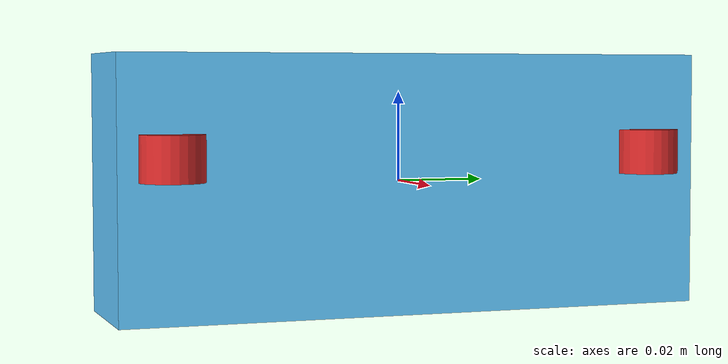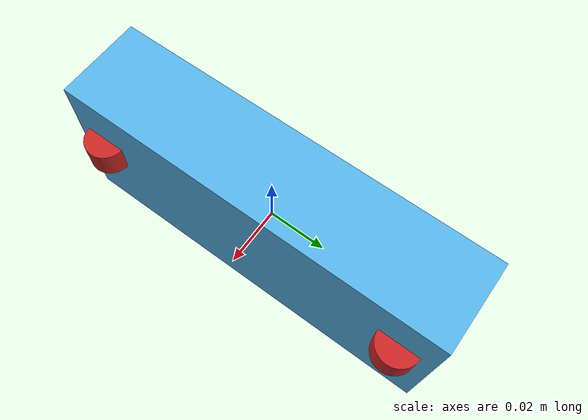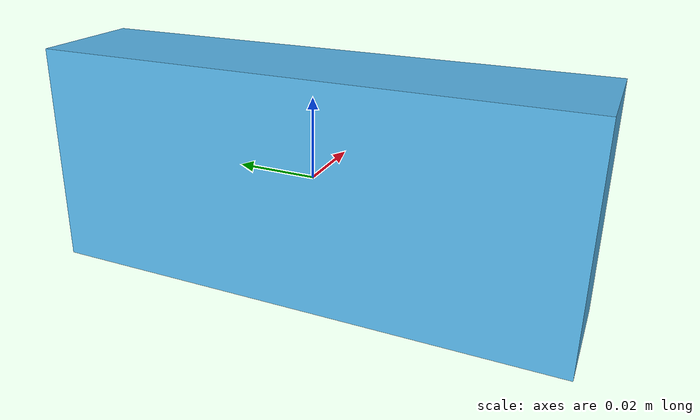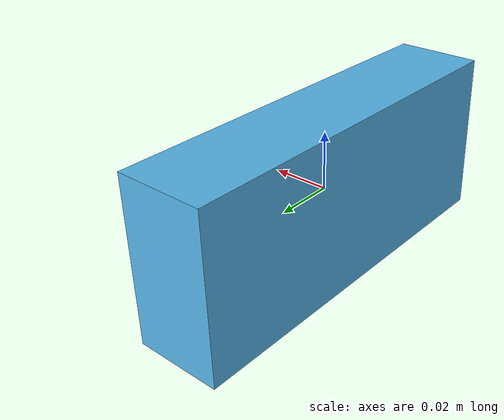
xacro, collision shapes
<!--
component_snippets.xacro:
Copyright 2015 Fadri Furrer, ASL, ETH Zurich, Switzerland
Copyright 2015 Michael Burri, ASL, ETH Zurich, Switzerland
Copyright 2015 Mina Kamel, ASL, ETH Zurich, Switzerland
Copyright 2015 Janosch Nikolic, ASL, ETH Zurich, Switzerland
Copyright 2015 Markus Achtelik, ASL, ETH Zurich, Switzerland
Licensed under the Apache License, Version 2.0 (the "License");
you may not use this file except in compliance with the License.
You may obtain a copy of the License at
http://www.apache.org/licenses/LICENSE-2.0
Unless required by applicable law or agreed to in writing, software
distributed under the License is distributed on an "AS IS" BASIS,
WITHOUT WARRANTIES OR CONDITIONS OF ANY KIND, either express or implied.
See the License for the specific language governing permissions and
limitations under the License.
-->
<?xml version="1.0" ?>

<robot name="vi_camera" xmlns:xacro="http://ros.org/wiki/xacro">

  <xacro:include filename="$(find vioquad_land)/extra/simulation/models/vi_camera/xacro/component_snippets.xacro" />
  <!-- VI-sensor. -->
  <xacro:vi_sensor_macro
    namespace="vi_sensor"
    parent_link="link"
    enable_cameras="true"
    enable_depth="true">
    <origin xyz="0.0 0.0 0.0" rpy="0.0 0.0 0.0" />
  </xacro:vi_sensor_macro>

</robot>

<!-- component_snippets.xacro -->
<robot xmlns:xacro="http://ros.org/wiki/xacro">

  <!-- Macro to add a camera. -->
  <xacro:macro name="camera_macro"
    params="namespace parent_link camera_suffix frame_rate
      horizontal_fov image_width image_height image_format min_distance
      max_distance noise_mean noise_stddev enable_visual *geometry *origin">
    <link name="${namespace}/camera_${camera_suffix}_link">
      <collision>
        <origin xyz="0 0 0" rpy="0 0 0" />
        <geometry>
          <xacro:insert_block name="geometry" />
        </geometry>
      </collision>
      <xacro:if value="${enable_visual}">
        <visual>
          <origin xyz="0 0 0" rpy="0 ${pi/2} 0" />
          <geometry>
            <xacro:insert_block name="geometry" />
          </geometry>
          <material name="red" />
        </visual>
      </xacro:if>
      <inertial>
        <mass value="1e-5" />
        <origin xyz="0 0 0" rpy="0 0 0" />
        <inertia ixx="1e-6" ixy="0" ixz="0" iyy="1e-6" iyz="0" izz="1e-6" />
      </inertial>
    </link>
    <joint name="${namespace}/camera_${camera_suffix}_joint" type="fixed">
      <xacro:insert_block name="origin" />
      <parent link="${parent_link}" />
      <child link="${namespace}/camera_${camera_suffix}_link" />
    </joint>
    <link name="${namespace}/camera_${camera_suffix}_optical_link" />
    <joint name="${namespace}/camera_${camera_suffix}_optical_joint" type="fixed" >
      <origin xyz="0 0 0" rpy="${-pi/2} 0 ${-pi/2}" />
      <parent link="${namespace}/camera_${camera_suffix}_link" />
      <child link="${namespace}/camera_${camera_suffix}_optical_link" />
    </joint>
    <gazebo reference="${namespace}/camera_${camera_suffix}_link">
      <sensor type="camera" name="${namespace}_camera_${camera_suffix}">
        <update_rate>${frame_rate}</update_rate>
        <camera name="head">
          <horizontal_fov>${horizontal_fov}</horizontal_fov>
          <image>
            <width>${image_width}</width>
            <height>${image_height}</height>
            <format>${image_format}</format>
          </image>
          <clip>
            <near>${min_distance}</near>
            <far>${max_distance}</far>
          </clip>
          <noise>
            <type>gaussian</type>
            <!-- Noise is sampled independently per pixel on each frame.
                 That pixel's noise value is added to each of its color
                 channels, which at that point lie in the range [0,1]. -->
            <mean>${noise_mean}</mean>
            <stddev>${noise_stddev}</stddev>
          </noise>
        </camera>
        <plugin name="${namespace}_camera_${camera_suffix}_controller" filename="libgazebo_ros_camera.so">
          <robotNamespace>${namespace}</robotNamespace>
          <alwaysOn>true</alwaysOn>
          <updateRate>${frame_rate}</updateRate>
          <cameraName>camera_${camera_suffix}</cameraName>
          <imageTopicName>image_raw</imageTopicName>
          <cameraInfoTopicName>camera_info</cameraInfoTopicName>
          <frameName>camera_${camera_suffix}_link</frameName>
          <hackBaseline>0.0</hackBaseline>
          <distortionK1>0.0</distortionK1>
          <distortionK2>0.0</distortionK2>
          <distortionK3>0.0</distortionK3>
          <distortionT1>0.0</distortionT1>
          <distortionT2>0.0</distortionT2>
        </plugin>
      </sensor>
    </gazebo>
  </xacro:macro>

  <!-- Camera joint macro - just the joints, links, and collisions for a single
       camera. -->
  <xacro:macro name="camera_joint_macro"
    params="namespace parent_link camera_suffix enable_visual *origin *geometry" >
    <link name="${namespace}/camera_${camera_suffix}_link">
      <collision>
        <origin xyz="0 0 0" rpy="0 0 0" />
        <geometry>
          <xacro:insert_block name="geometry" />
        </geometry>
      </collision>
      <xacro:if value="${enable_visual}">
        <visual>
          <origin xyz="0 0 0" rpy="0 0 0" />
          <geometry>
            <xacro:insert_block name="geometry" />
          </geometry>
          <material name="red" />
        </visual>
      </xacro:if>
      <inertial>
        <mass value="1e-5" />
        <origin xyz="0 0 0" rpy="0 0 0" />
        <inertia ixx="1e-6" ixy="0" ixz="0" iyy="1e-6" iyz="0" izz="1e-6" />
      </inertial>
    </link>
    <joint name="${namespace}/camera_${camera_suffix}_joint" type="fixed">
      <xacro:insert_block name="origin" />
      <parent link="${parent_link}" />
      <child link="${namespace}/camera_${camera_suffix}_link" />
    </joint>
  </xacro:macro>

  <!-- Camera sensor macro - just image parameters. -->
  <xacro:macro name="camera_sensor_macro"
    params="camera_suffix horizontal_fov image_width image_height
      image_format min_distance max_distance noise_mean noise_stddev
      baseline" >
    <camera name="${camera_suffix}">
      <pose>0 ${-baseline} 0 0 0 0</pose>
      <horizontal_fov>${horizontal_fov}</horizontal_fov>
      <image>
        <width>${image_width}</width>
        <height>${image_height}</height>
        <format>${image_format}</format>
      </image>
      <clip>
        <near>${min_distance}</near>
        <far>${max_distance}</far>
      </clip>
      <noise>
        <type>gaussian</type>
        <!-- Noise is sampled independently per pixel on each frame.
             That pixel's noise value is added to each of its color
             channels, which at that point lie in the range [0,1]. -->
        <mean>${noise_mean}</mean>
        <stddev>${noise_stddev}</stddev>
      </noise>
    </camera>
  </xacro:macro>

  <!-- Macro to add a multicamera (stereo pair). -->
  <xacro:macro name="stereo_camera_macro"
    params="namespace camera_name parent_link frame_rate
      horizontal_fov image_width image_height image_format min_distance
      max_distance noise_mean noise_stddev enable_visual origin_offset_x
      baseline_y origin_offset_z *geometry">
    <!-- These are parameters for the left camera link and then the right
        as well. -->
    <xacro:camera_joint_macro namespace="${namespace}"
      parent_link="${parent_link}"
      camera_suffix="left" enable_visual="${enable_visual}">
      <origin xyz="${origin_offset_x} ${baseline_y/2} ${origin_offset_z}" rpy="0 0 0" />
      <xacro:insert_block name="geometry" />
    </xacro:camera_joint_macro>
    <xacro:camera_joint_macro namespace="${namespace}"
      parent_link="${parent_link}"
      camera_suffix="right" enable_visual="${enable_visual}">
      <origin xyz="${origin_offset_x} ${-baseline_y/2} ${origin_offset_z}" rpy="0 0 0" />
      <xacro:insert_block name="geometry" />
    </xacro:camera_joint_macro>

    <link name="${namespace}/camera_left_optical_link" />
    <joint name="${namespace}/camera_left_optical_joint" type="fixed" >
      <origin xyz="0 0 0" rpy="${-pi/2} 0 ${-pi/2}" />
      <parent link="${namespace}/camera_left_link" />
      <child link="${namespace}/camera_left_optical_link" />
    </joint>

    <!-- Both cameras in the pair are anchored off the left camera frame. -->
    <gazebo reference="${namespace}/camera_left_link">
      <sensor type="multicamera" name="${namespace}_stereo_camera">
        <update_rate>${frame_rate}</update_rate>

        <!-- Here we set up the individual cameras of the stereo head. -->
        <xacro:camera_sensor_macro camera_suffix="left"
            horizontal_fov="${horizontal_fov}" image_width="${image_width}"
            image_height="${image_height}" image_format="${image_format}"
            min_distance="${min_distance}" max_distance="${max_distance}"
            noise_mean="${noise_mean}" noise_stddev="${noise_stddev}"
            baseline="0">
        </xacro:camera_sensor_macro>

        <xacro:camera_sensor_macro camera_suffix="right"
            horizontal_fov="${horizontal_fov}" image_width="${image_width}"
            image_height="${image_height}" image_format="${image_format}"
            min_distance="${min_distance}" max_distance="${max_distance}"
            noise_mean="${noise_mean}" noise_stddev="${noise_stddev}"
            baseline="${baseline_y}">
        </xacro:camera_sensor_macro>

        <!-- Stereo controller, setting the transforms between the two cameras. -->
        <plugin name="${namespace}_stereo_camera_controller" filename="libgazebo_ros_multicamera.so">
          <alwaysOn>true</alwaysOn>
          <updateRate>0.0</updateRate>
          <cameraName>${camera_name}</cameraName>
          <imageTopicName>image_raw</imageTopicName>
          <cameraInfoTopicName>camera_info</cameraInfoTopicName>
          <frameName>${camera_name}/camera_left_link</frameName>
          <hackBaseline>${baseline_y}</hackBaseline>
          <distortionK1>0.0</distortionK1>
          <distortionK2>0.0</distortionK2>
          <distortionK3>0.0</distortionK3>
          <distortionT1>0.0</distortionT1>
          <distortionT2>0.0</distortionT2>
        </plugin>
      </sensor>
    </gazebo>
  </xacro:macro>

  <!-- Macro to add RotorS IMU. -->

  <!-- Macro for default ROS IMU -->
  <xacro:macro name="imu_plugin_macro"
    params="namespace parent_link imu_topic
      mass_imu_sensor frame_rate gaussian_noise
      *inertia *origin">
    <link name="${namespace}/imu_link">
      <inertial>
        <xacro:insert_block name="inertia" />
        <mass value="${mass_imu_sensor}" />
        <origin xyz="0 0 0" rpy="0 0 0" />
      </inertial>
    </link>
    <joint name="${namespace}/imu_joint" type="revolute">
      <xacro:insert_block name="origin" />
      <parent link="${parent_link}" />
      <child link="${namespace}/imu_link" />
      <limit upper="0" lower="0" effort="0" velocity="0" />
    </joint>
    <gazebo reference="${namespace}/imu_link">
      <gravity>true</gravity>
      <sensor type="imu" name="${namespace}_imu">
        <always_on>true</always_on>
        <update_rate>${frame_rate}</update_rate>
        <plugin name="${namespace}_imu_controller" filename="libgazebo_ros_imu_sensor.so">
          <robotNamespace>${namespace}</robotNamespace>
          <topicName>${imu_topic}</topicName>
          <frameName>imu_link</frameName>
          <updateRateHZ>${frame_rate}</updateRateHZ>
          <gaussianNoise>${gaussian_noise}</gaussianNoise>
          <xyzOffset>0 0 0</xyzOffset>
          <rpyOffset>0 0 0</rpyOffset>
          <initialOrientationAsReference>false</initialOrientationAsReference>
        </plugin>
        <pose>0 0 0 0 0 0</pose>
      </sensor>
    </gazebo>
  </xacro:macro>

  <!-- VI sensor macros -->
  <!-- Macro to add a VI-sensor stereo camera. -->
  <xacro:macro name="vi_sensor_stereo_camera_macro"
    params="namespace parent_link frame_rate origin_offset_x baseline_y origin_offset_z max_range">
    <xacro:stereo_camera_macro
      namespace="${namespace}"
      camera_name="vi_sensor"
      parent_link="${parent_link}"
      frame_rate="${frame_rate}"
      horizontal_fov="1.3962634"
      image_width="752"
      image_height="480"
      image_format="L8"
      min_distance="0.02"
      max_distance="${max_range}"
      noise_mean="0.0"
      noise_stddev="0.007"
      enable_visual="true"
      origin_offset_x="${origin_offset_x}"
      baseline_y="${baseline_y}"
      origin_offset_z="${origin_offset_z}" >
      <cylinder length="0.01" radius="0.007" />
    </xacro:stereo_camera_macro>
  </xacro:macro>

  <!-- Macro to add a depth camera on the VI-sensor. -->
  <xacro:macro name="vi_sensor_depth_macro"
    params="namespace parent_link camera_suffix frame_rate max_range *origin">
    <link name="${namespace}/camera_${camera_suffix}_link">
      <collision>
        <origin xyz="0 0 0" rpy="0 0 0" />
        <geometry>
          <cylinder length="0.01" radius="0.007" />
        </geometry>
      </collision>
      <inertial>
        <mass value="1e-5" />
        <origin xyz="0 0 0" rpy="0 0 0" />
        <inertia ixx="1e-6" ixy="0" ixz="0" iyy="1e-6" iyz="0" izz="1e-6" />
      </inertial>
    </link>
    <joint name="${namespace}/camera_${camera_suffix}_joint" type="fixed">
      <xacro:insert_block name="origin" />
      <parent link="${parent_link}" />
      <child link="${namespace}/camera_${camera_suffix}_link" />
      <limit upper="0" lower="0" effort="0" velocity="0" />
    </joint>
    <!-- Optical center of camera -->
    <link name="${namespace}/camera_${camera_suffix}_optical_center_link" />
    <joint name="${namespace}/camera_${camera_suffix}_optical_center_joint" type="fixed">
      <origin xyz="0 0 0" rpy="${-pi/2} 0 ${-pi/2}" />
      <parent link="${namespace}/camera_${camera_suffix}_link" />
      <child link="${namespace}/camera_${camera_suffix}_optical_center_link" />
      <limit upper="0" lower="0" effort="0" velocity="0" />
    </joint>
    <gazebo reference="${namespace}/camera_${camera_suffix}_link">
      <sensor type="depth" name="${namespace}_camera_${camera_suffix}">
        <always_on>true</always_on>
        <update_rate>${frame_rate}</update_rate>
        <camera>
          <horizontal_fov>2</horizontal_fov>
          <image>
            <format>L8</format>
            <width>640</width>
            <height>480</height>
          </image>
          <clip>
            <near>0.01</near>
            <far>${max_range}</far>
          </clip>
        </camera>
        <plugin name="${namespace}_camera_${camera_suffix}" filename="libgazebo_ros_openni_kinect.so">
          <robotNamespace>${namespace}</robotNamespace>
          <alwaysOn>true</alwaysOn>
          <baseline>0.11</baseline>
          <updateRate>${frame_rate}</updateRate>
          <cameraName>camera_${camera_suffix}</cameraName>
          <imageTopicName>camera/image_raw</imageTopicName>
          <cameraInfoTopicName>camera/camera_info</cameraInfoTopicName>
          <depthImageTopicName>depth/disparity</depthImageTopicName>
          <depthImageCameraInfoTopicName>depth/camera_info</depthImageCameraInfoTopicName>
          <pointCloudTopicName>depth/points</pointCloudTopicName>
          <frameName>camera_${camera_suffix}_optical_center_link</frameName>
          <pointCloudCutoff>0.5</pointCloudCutoff>
          <pointCloudCutoffMax>${max_range}</pointCloudCutoffMax>
          <distortionK1>0.0</distortionK1>
          <distortionK2>0.0</distortionK2>
          <distortionK3>0.0</distortionK3>
          <distortionT1>0.0</distortionT1>
          <distortionT2>0.0</distortionT2>
        </plugin>
      </sensor>
    </gazebo>
  </xacro:macro>

  <!-- VI-Sensor Macro -->
  <xacro:macro name="vi_sensor_macro" params="namespace parent_link enable_cameras enable_depth *origin">
    <link name="${parent_link}"/>
    <!-- Vi Sensor Link -->
    <link name="${namespace}/vi_sensor_link">
      <collision>
        <origin xyz="0 0 0" rpy="0 0 0" />
        <geometry>
          <box size="0.03 0.133 0.057" />
        </geometry>
      </collision>

      <visual>
        <origin xyz="0 0 0" rpy="0 0 0" />
        <geometry>
          <mesh filename="package://vi_camera/meshes/vi_camera.dae" scale="1 1 1" />
        </geometry>
      </visual>

      <inertial>
        <!-- original !-->
        <mass value="1e-16" />   <!-- added by SW !-->
        <origin xyz="0 0 0" rpy="0 0 0" />
        <inertia ixx="1e-6" ixy="0" ixz="0" iyy="1e-6" iyz="0" izz="1e-6" />
      </inertial>
    </link>
    <joint name="${namespace}/vi_sensor_joint" type="fixed">
      <xacro:insert_block name="origin" />
      <parent link="${parent_link}" />
      <child link="${namespace}/vi_sensor_link" />
    </joint>
    <!-- Cameras -->
    <xacro:if value="${enable_cameras}">
      <!-- Insert stereo pair. -->
      <xacro:vi_sensor_stereo_camera_macro
        namespace="${namespace}" parent_link="${namespace}/vi_sensor_link"
        frame_rate="30.0" origin_offset_x="0.015" baseline_y="${0.055*2}"
        origin_offset_z="0.0065" max_range="30.0">
      </xacro:vi_sensor_stereo_camera_macro>
    </xacro:if>

    <!-- Depth Sensor -->
    <xacro:if value="${enable_depth}">
      <xacro:vi_sensor_depth_macro
        namespace="${namespace}" parent_link="${namespace}/vi_sensor_link"
        camera_suffix="depth" frame_rate="30.0" max_range="10.0">
        <origin xyz="0.015 0.055 0.0065" rpy="0 0 0" />
      </xacro:vi_sensor_depth_macro>
    </xacro:if>

    <xacro:imu_plugin_macro
      namespace="${namespace}"
      parent_link="${namespace}/vi_sensor_link"
      imu_topic="imu"
      mass_imu_sensor="0.015"
      frame_rate="100.0"
      gaussian_noise="0.0">
      <inertia ixx="0.00001" ixy="0.0" ixz="0.0" iyy="0.00001" iyz="0.0" izz="0.00001" />
      <origin xyz="0.0 0 0.0" rpy="0 0 0" />
    </xacro:imu_plugin_macro>

  </xacro:macro>

</robot>
